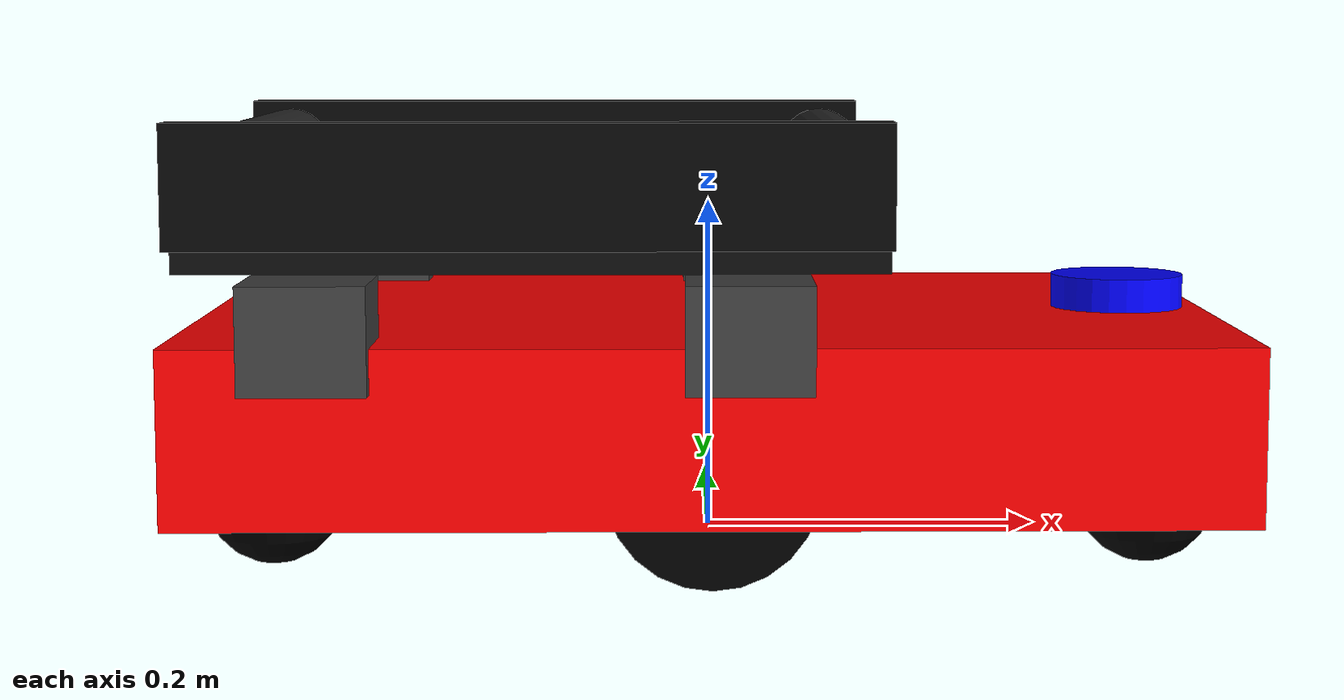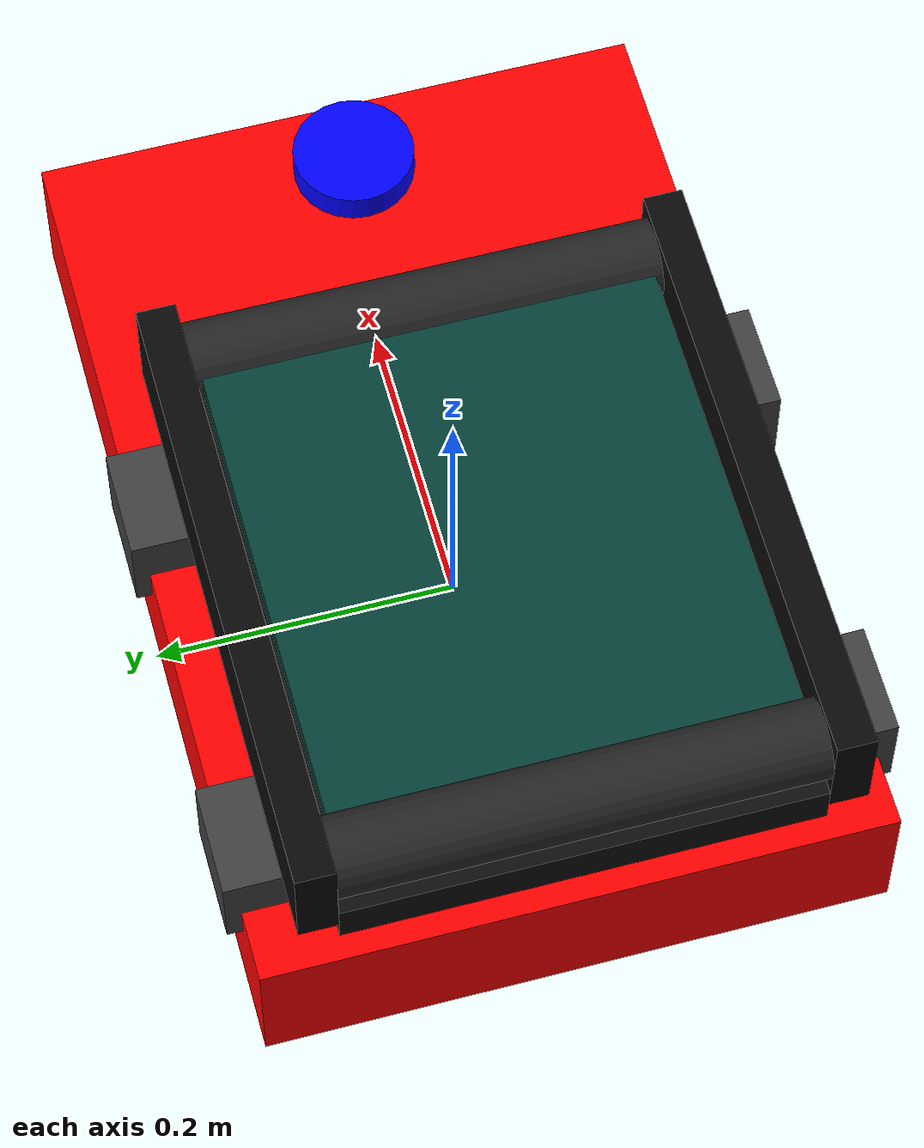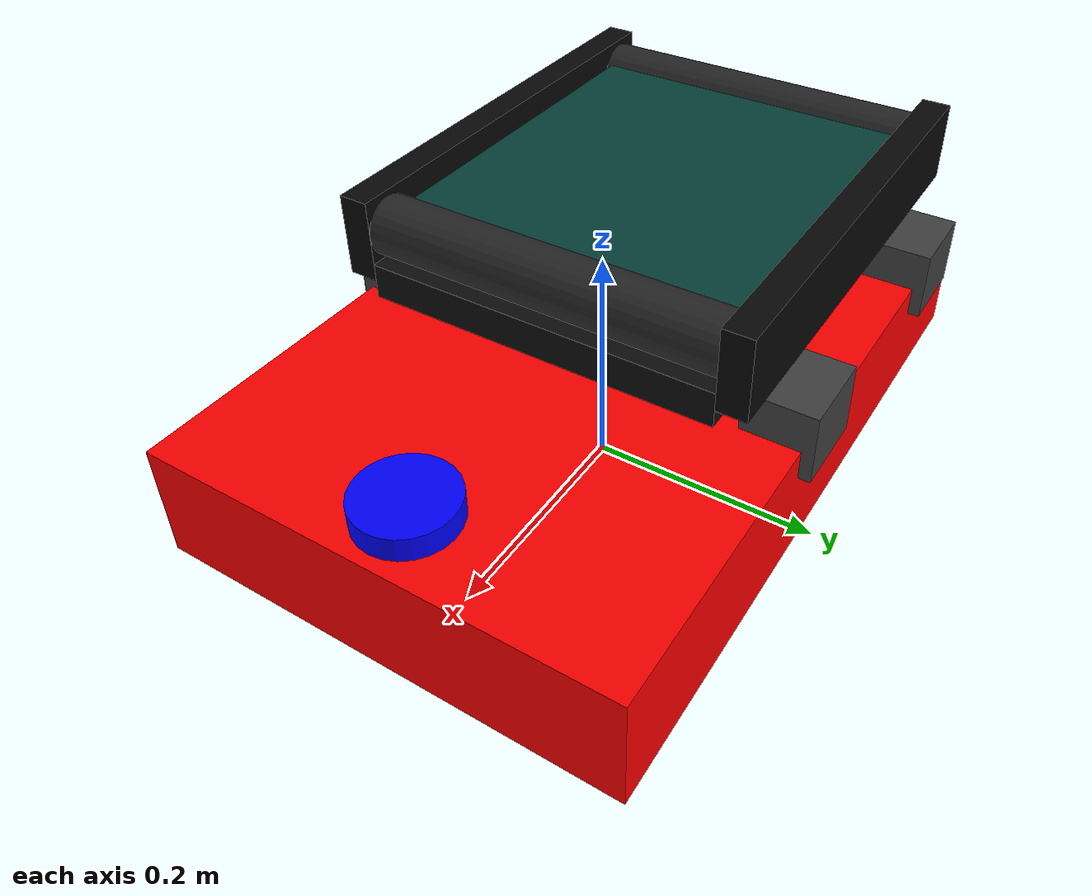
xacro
<?xml version="1.0"?>
<robot xmlns:xacro="http://www.ros.org/wiki/xacro" name="my_first_robot">

    <xacro:include filename="$(find robot_description)/urdf/properties.xacro"/>
    <xacro:include filename="$(find robot_description)/urdf/base.xacro"/>
    <xacro:include filename="$(find robot_description)/urdf/lidar.xacro"/>
    <xacro:include filename="$(find robot_description)/urdf/caster.xacro"/>
    <xacro:include filename="$(find robot_description)/urdf/wheel.xacro"/>
    <xacro:include filename="$(find robot_description)/urdf/materials.xacro"/>
    <xacro:include filename="$(find robot_description)/urdf/gazebo.xacro"/>
    <xacro:include filename="$(find robot_description)/urdf/conveyor.xacro"/>
    <xacro:include filename="$(find robot_description)/urdf/ros2_control.xacro"/>

</robot>

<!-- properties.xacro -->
<robot xmlns:xacro="http://www.ros.org/wiki/xacro" name="my_first_robot">

    <xacro:property name="base_length" value="0.6"/>
    <xacro:property name="base_width" value="0.4"/>
    <xacro:property name="base_height" value="0.1"/>
    <xacro:property name="base_mass" value="10.0"/>

    <xacro:property name="wheel_radius" value="0.06"/>
    <xacro:property name="wheel_width" value="0.04"/>
    <xacro:property name="wheel_mass" value="2.0"/>

    <xacro:property name="lidar_radius" value="0.04"/>
    <xacro:property name="lidar_length" value="0.02"/>
    <xacro:property name="lidar_mass" value="4.0"/>

    <xacro:property name="caster_radius" value="0.04"/>
    <xacro:property name="caster_mass" value="0.3"/>

</robot>

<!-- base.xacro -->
<robot name="my_first_robot" xmlns:xacro="http://www.ros.org/wiki/xacro">

    <link name="base_footprint"/>

    <joint name="foot_print_joint" type="fixed">
        <parent link="base_footprint"/>
        <child link="base_link"/>
        <origin xyz="0 0 0.085" rpy="0 0 0"/>
    </joint>

    <link name="base_link">
        <visual>
            <geometry>
                <box size="${base_length} ${base_width} ${base_height}"/>
            </geometry>
            <material name="Red"/>
        </visual>
        <collision>
            <geometry>
                <box size="${base_length} ${base_width} ${base_height}"/>
            </geometry>
        </collision>
        <inertial>
            <mass value="${base_mass}"/>
            <inertia ixx="${base_mass * (base_width**2 + base_height**2) / 12}" ixy="0" ixz="0" iyy="${base_mass * (base_length**2 + base_height**2) / 12}" iyz="0" izz="${base_mass * (base_length**2 + base_width**2) / 12}"/>
        </inertial>
    </link>

</robot>

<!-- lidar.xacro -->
<robot xmlns:xacro="http://www.ros.org/wiki/xacro" name="my_first_robot">

    <link name="lidar_link">
        <visual>
            <geometry>
                <cylinder radius="${lidar_radius}" length="${lidar_length}"/>
            </geometry>
            <material name="Blue"/>
        </visual>

        <collision>
            <geometry>
                <cylinder radius="${lidar_radius}" length="${lidar_length}"/>
            </geometry>
        </collision>

        <inertial>
            <mass value="${lidar_mass}"/>
            <inertia ixx="0.0002" ixy="0.0" ixz="0.0" iyy="0.0002" iyz="0.0" izz="0.0008"/>
        </inertial>
    </link>

    <joint name="lidar_joint" type="fixed">
        <parent link="base_link"/>
        <child link="lidar_link"/>
        <origin xyz="0.25 0 ${base_height/2 + lidar_length/2}" rpy="0 0 0"/>
    </joint>
</robot>

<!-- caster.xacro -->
<robot name="my_first_robot"
       xmlns:xacro="http://www.ros.org/wiki/xacro">

    <!-- FRONT LEFT CASTER WHEEL -->

    <link name="front_left_caster_wheel">

        <visual>
            <geometry>
                <sphere radius="${caster_radius}"/>
            </geometry>
            <material name="Black"/>
        </visual>

        <collision>
            <geometry>
                <sphere radius="${caster_radius}"/>
            </geometry>
        </collision>

        <inertial>
            <mass value="${caster_mass}"/>
            <inertia
                ixx="${2 * caster_mass * caster_radius**2 / 5}"
                ixy="0"
                ixz="0"
                iyy="${2 * caster_mass * caster_radius**2 / 5}"
                iyz="0"
                izz="${2 * caster_mass * caster_radius**2 / 5}"/>
        </inertial>

    </link>

    <joint name="front_left_caster_wheel_joint"
           type="fixed">

        <parent link="base_link"/>
        <child link="front_left_caster_wheel"/>

        <origin
            xyz="0.25 0.11 -0.045"
            rpy="0 0 0"/>

    </joint>

    <!-- FRONT RIGHT CASTER WHEEL -->

    <link name="front_right_caster_wheel">

        <visual>
            <geometry>
                <sphere radius="${caster_radius}"/>
            </geometry>
            <material name="Black"/>
        </visual>

        <collision>
            <geometry>
                <sphere radius="${caster_radius}"/>
            </geometry>
        </collision>

        <inertial>
            <mass value="${caster_mass}"/>
            <inertia
                ixx="${2 * caster_mass * caster_radius**2 / 5}"
                ixy="0"
                ixz="0"
                iyy="${2 * caster_mass * caster_radius**2 / 5}"
                iyz="0"
                izz="${2 * caster_mass * caster_radius**2 / 5}"/>
        </inertial>

    </link>

    <joint name="front_right_caster_wheel_joint"
           type="fixed">

        <parent link="base_link"/>
        <child link="front_right_caster_wheel"/>

        <origin
            xyz="0.25 -0.11 -0.045"
            rpy="0 0 0"/>

    </joint>

    <!-- REAR LEFT CASTER WHEEL -->

    <link name="rear_left_caster_wheel">

        <visual>
            <geometry>
                <sphere radius="${caster_radius}"/>
            </geometry>
            <material name="Black"/>
        </visual>

        <collision>
            <geometry>
                <sphere radius="${caster_radius}"/>
            </geometry>
        </collision>

        <inertial>
            <mass value="${caster_mass}"/>
            <inertia
                ixx="${2 * caster_mass * caster_radius**2 / 5}"
                ixy="0"
                ixz="0"
                iyy="${2 * caster_mass * caster_radius**2 / 5}"
                iyz="0"
                izz="${2 * caster_mass * caster_radius**2 / 5}"/>
        </inertial>

    </link>

    <joint name="rear_left_caster_wheel_joint"
           type="fixed">

        <parent link="base_link"/>
        <child link="rear_left_caster_wheel"/>

        <origin
            xyz="-0.25 0.11 -0.045"
            rpy="0 0 0"/>

    </joint>

    <!-- REAR RIGHT CASTER WHEEL -->

    <link name="rear_right_caster_wheel">

        <visual>
            <geometry>
                <sphere radius="${caster_radius}"/>
            </geometry>
            <material name="Black"/>
        </visual>

        <collision>
            <geometry>
                <sphere radius="${caster_radius}"/>
            </geometry>
        </collision>

        <inertial>
            <mass value="${caster_mass}"/>
            <inertia
                ixx="${2 * caster_mass * caster_radius**2 / 5}"
                ixy="0"
                ixz="0"
                iyy="${2 * caster_mass * caster_radius**2 / 5}"
                iyz="0"
                izz="${2 * caster_mass * caster_radius**2 / 5}"/>
        </inertial>

    </link>

    <joint name="rear_right_caster_wheel_joint"
           type="fixed">

        <parent link="base_link"/>
        <child link="rear_right_caster_wheel"/>

        <origin
            xyz="-0.25 -0.11 -0.045"
            rpy="0 0 0"/>

    </joint>

</robot>

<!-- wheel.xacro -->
<robot name="my_first_robot" xmlns:xacro="http://www.ros.org/wiki/xacro">

    <!-- RIGHT REAR WHEEL -->
    <link name="right_wheel">
        <visual>
            <geometry>
                <cylinder radius="${wheel_radius}" length="${wheel_width}"/>
            </geometry>
            <material name="Black"/>
        </visual>
        <collision>
            <geometry>
                <cylinder radius="${wheel_radius}" length="${wheel_width}"/>
            </geometry>
        </collision>
        <inertial>
            <mass value="${wheel_mass}"/>
            <inertia ixx="${wheel_mass * (3 * wheel_radius * wheel_radius + wheel_width * wheel_width) / 12}" ixy="0" ixz="0"
                     iyy="${wheel_mass * (3 * wheel_radius * wheel_radius + wheel_width * wheel_width) / 12}" iyz="0"
                     izz="${(wheel_mass * wheel_radius * wheel_radius) / 2}"/>
        </inertial>
    </link>

    <joint name="right_wheel_joint" type="continuous">
        <parent link="base_link"/>
        <child link="right_wheel"/>
        <origin xyz="0 0.17 -0.025" rpy="-1.5708 0 0"/>
        <axis xyz="0 0 1"/>
    </joint>

    <!-- LEFT REAR WHEEL -->
    <link name="left_wheel">
        <visual>
            <geometry>
                <cylinder radius="${wheel_radius}" length="${wheel_width}"/>
            </geometry>
            <material name="Black"/>
        </visual>
        <collision>
            <geometry>
                <cylinder radius="${wheel_radius}" length="${wheel_width}"/>
            </geometry>
        </collision>
        <inertial>
            <mass value="${wheel_mass}"/>
            <inertia ixx="${wheel_mass * (3 * wheel_radius * wheel_radius + wheel_width * wheel_width) / 12}" ixy="0" ixz="0"
                     iyy="${wheel_mass * (3 * wheel_radius * wheel_radius + wheel_width * wheel_width) / 12}" iyz="0"
                     izz="${(wheel_mass * wheel_radius * wheel_radius) / 2}"/>
        </inertial>
    </link>

    <joint name="left_wheel_joint" type="continuous">
        <parent link="base_link"/>
        <child link="left_wheel"/>
        <origin xyz="0 -0.17 -0.025" rpy="-1.5708 0 0"/>
        <axis xyz="0 0 1"/>
    </joint>

</robot>

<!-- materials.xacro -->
<robot xmlns:xacro="http://www.ros.org/wiki/xacro" name="my_first_robot">

    <material name="Red">
        <color rgba="1 0 0 1"/>
    </material>

    <material name="Black">
        <color rgba="0 0 0 1"/>
    </material>

    <material name="Blue">
        <color rgba="0 0 1 1"/>
    </material>

</robot>

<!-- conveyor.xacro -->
<robot name="conveyor"
       xmlns:xacro="http://www.ros.org/wiki/xacro">

    <!-- CONVEYOR PARAMETERS                                      -->

    <xacro:property name="conveyor_length" value="0.40"/>
    <xacro:property name="conveyor_width" value="0.30"/>
    <xacro:property name="conveyor_thickness" value="0.03"/>

    <!-- Position above robot base -->
    <xacro:property name="conveyor_z" value="0.10"/>

    <!-- ROLLER PARAMETERS                                        -->

    <xacro:property name="roller_radius" value="0.025"/>
    <xacro:property name="roller_length"
                    value="${conveyor_width}"/>

    <!-- SUPPORT PARAMETERS                                       -->

    <xacro:property name="frame_thickness" value="0.025"/>
    <xacro:property name="frame_height" value="0.07"/>

    <!-- MOTOR PARAMETERS                                         -->

    <xacro:property name="motor_length" value="0.07"/>
    <xacro:property name="motor_width" value="0.06"/>
    <xacro:property name="motor_height" value="0.06"/>

    <!-- MAIN CONVEYOR FRAME                                      -->

    <link name="conveyor_frame">

        <visual>
            <origin xyz="0 0 0" rpy="0 0 0"/>

            <geometry>
                <box size="${conveyor_length}
                           ${conveyor_width}
                           ${conveyor_thickness}"/>
            </geometry>

            <material name="conveyor_frame_material">
                <color rgba="0.05 0.05 0.05 1"/>
            </material>
        </visual>

        <collision>
            <origin xyz="0 0 0" rpy="0 0 0"/>

            <geometry>
                <box size="${conveyor_length}
                           ${conveyor_width}
                           ${conveyor_thickness}"/>
            </geometry>
        </collision>

        <inertial>
            <origin xyz="0 0 0" rpy="0 0 0"/>

            <mass value="2.0"/>

            <inertia
                ixx="0.01"
                ixy="0"
                ixz="0"
                iyy="0.01"
                iyz="0"
                izz="0.01"/>
        </inertial>

    </link>

    <!-- CONNECT CONVEYOR TO ROBOT BASE                           -->

    <joint name="conveyor_frame_joint" type="fixed">

        <parent link="base_link"/>
        <child link="conveyor_frame"/>

        <origin xyz="-0.10 0 ${conveyor_z}"
                rpy="0 0 0"/>

    </joint>

    <!-- FRONT ROLLER                                             -->

    <link name="front_conveyor_roller">

        <visual>

            <!-- Cylinder axis along Y -->
            <origin xyz="0 0 0"
                    rpy="-1.5708 0 0"/>

            <geometry>
                <cylinder
                    radius="${roller_radius}"
                    length="${roller_length}"/>
            </geometry>

            <material name="front_roller_material">
                <color rgba="0.15 0.15 0.15 1"/>
            </material>

        </visual>

        <collision>

            <origin xyz="0 0 0"
                    rpy="-1.5708 0 0"/>

            <geometry>
                <cylinder
                    radius="${roller_radius}"
                    length="${roller_length}"/>
            </geometry>

        </collision>

        <inertial>

            <origin xyz="0 0 0"
                    rpy="0 0 0"/>

            <mass value="0.3"/>

            <inertia
                ixx="0.0001"
                ixy="0"
                ixz="0"
                iyy="0.0001"
                iyz="0"
                izz="0.0001"/>

        </inertial>

    </link>

    <joint name="front_conveyor_roller_joint"
           type="continuous">

        <parent link="conveyor_frame"/>
        <child link="front_conveyor_roller"/>

        <origin
            xyz="${conveyor_length/2 - roller_radius}
                 0
                 ${conveyor_thickness/2 + roller_radius}"
            rpy="0 0 0"/>

        <axis xyz="0 1 0"/>

    </joint>

    <!-- REAR ROLLER                                              -->

    <link name="rear_conveyor_roller">

        <visual>

            <origin xyz="0 0 0"
                    rpy="-1.5708 0 0"/>

            <geometry>
                <cylinder
                    radius="${roller_radius}"
                    length="${roller_length}"/>
            </geometry>

            <material name="rear_roller_material">
                <color rgba="0.15 0.15 0.15 1"/>
            </material>

        </visual>

        <collision>

            <origin xyz="0 0 0"
                    rpy="-1.5708 0 0"/>

            <geometry>
                <cylinder
                    radius="${roller_radius}"
                    length="${roller_length}"/>
            </geometry>

        </collision>

        <inertial>

            <origin xyz="0 0 0"
                    rpy="0 0 0"/>

            <mass value="0.3"/>

            <inertia
                ixx="0.0001"
                ixy="0"
                ixz="0"
                iyy="0.0001"
                iyz="0"
                izz="0.0001"/>

        </inertial>

    </link>

    <joint name="rear_conveyor_roller_joint"
           type="continuous">

        <parent link="conveyor_frame"/>
        <child link="rear_conveyor_roller"/>

        <origin
            xyz="${-conveyor_length/2 + roller_radius}
                 0
                 ${conveyor_thickness/2 + roller_radius}"
            rpy="0 0 0"/>

        <axis xyz="0 1 0"/>

    </joint>

    <!-- CONVEYOR BELT                                            -->

    <link name="conveyor_belt">

        <visual>

            <origin
                xyz="0
                     0
                     ${conveyor_thickness/2 + roller_radius + 0.005}"
                rpy="0 0 0"/>

            <geometry>
                <box
                    size="${conveyor_length - 0.02}
                          ${conveyor_width - 0.01}
                          0.015"/>
            </geometry>

            <material name="belt_material">
                <color rgba="0.02 0.25 0.22 1"/>
            </material>

        </visual>

        <collision>

            <origin
                xyz="0
                     0
                     ${conveyor_thickness/2 + roller_radius + 0.005}"
                rpy="0 0 0"/>

            <geometry>
                <box
                    size="${conveyor_length - 0.02}
                          ${conveyor_width - 0.01}
                          0.015"/>
            </geometry>

        </collision>

    </link>

    <joint name="conveyor_belt_joint"
           type="fixed">

        <parent link="conveyor_frame"/>
        <child link="conveyor_belt"/>

        <origin xyz="0 0 0"
                rpy="0 0 0"/>

    </joint>

    <!-- LEFT SIDE SUPPORT                                        -->

    <link name="conveyor_left_support">

        <visual>

            <origin xyz="0 0 0"
                    rpy="0 0 0"/>

            <geometry>
                <box
                    size="${conveyor_length}
                          ${frame_thickness}
                          ${frame_height}"/>
            </geometry>

            <material name="left_support_material">
                <color rgba="0.03 0.03 0.03 1"/>
            </material>

        </visual>

        <collision>

            <origin xyz="0 0 0"
                    rpy="0 0 0"/>

            <geometry>
                <box
                    size="${conveyor_length}
                          ${frame_thickness}
                          ${frame_height}"/>
            </geometry>

        </collision>

        <inertial>

            <origin xyz="0 0 0"
                    rpy="0 0 0"/>

            <mass value="0.5"/>

            <inertia
                ixx="0.001"
                ixy="0"
                ixz="0"
                iyy="0.001"
                iyz="0"
                izz="0.001"/>

        </inertial>

    </link>

    <joint name="conveyor_left_support_joint"
           type="fixed">

        <parent link="conveyor_frame"/>
        <child link="conveyor_left_support"/>

        <origin
            xyz="0
                 ${conveyor_width/2 + frame_thickness/2}
                 ${frame_height/2}"
            rpy="0 0 0"/>

    </joint>

    <!-- RIGHT SIDE SUPPORT                                       -->

    <link name="conveyor_right_support">

        <visual>

            <origin xyz="0 0 0"
                    rpy="0 0 0"/>

            <geometry>
                <box
                    size="${conveyor_length}
                          ${frame_thickness}
                          ${frame_height}"/>
            </geometry>

            <material name="right_support_material">
                <color rgba="0.03 0.03 0.03 1"/>
            </material>

        </visual>

        <collision>

            <origin xyz="0 0 0"
                    rpy="0 0 0"/>

            <geometry>
                <box
                    size="${conveyor_length}
                          ${frame_thickness}
                          ${frame_height}"/>
            </geometry>

        </collision>

        <inertial>

            <origin xyz="0 0 0"
                    rpy="0 0 0"/>

            <mass value="0.5"/>

            <inertia
                ixx="0.001"
                ixy="0"
                ixz="0"
                iyy="0.001"
                iyz="0"
                izz="0.001"/>

        </inertial>

    </link>

    <joint name="conveyor_right_support_joint"
           type="fixed">

        <parent link="conveyor_frame"/>
        <child link="conveyor_right_support"/>

        <origin
            xyz="0
                 ${-(conveyor_width/2 + frame_thickness/2)}
                 ${frame_height/2}"
            rpy="0 0 0"/>

    </joint>

    <!-- FRONT LEFT MOTOR                                         -->

    <link name="conveyor_front_left_motor">

        <visual>

            <origin xyz="0 0 0"
                    rpy="0 0 0"/>

            <geometry>
                <box
                    size="${motor_length}
                          ${motor_width}
                          ${motor_height}"/>
            </geometry>

            <material name="front_left_motor_material">
                <color rgba="0.25 0.25 0.25 1"/>
            </material>

        </visual>

        <collision>

            <origin xyz="0 0 0"
                    rpy="0 0 0"/>

            <geometry>
                <box
                    size="${motor_length}
                          ${motor_width}
                          ${motor_height}"/>
            </geometry>

        </collision>

    </link>

    <joint name="conveyor_front_left_motor_joint"
           type="fixed">

        <parent link="conveyor_frame"/>
        <child link="conveyor_front_left_motor"/>

        <origin
            xyz="${conveyor_length/2 - 0.08}
                 ${-(conveyor_width/2 + motor_width/2)}
                 -${motor_height/2 + conveyor_thickness/2}"
            rpy="0 0 0"/>

    </joint>

    <!-- FRONT RIGHT MOTOR                                        -->

    <link name="conveyor_front_right_motor">

        <visual>

            <origin xyz="0 0 0"
                    rpy="0 0 0"/>

            <geometry>
                <box
                    size="${motor_length}
                          ${motor_width}
                          ${motor_height}"/>
            </geometry>

            <material name="front_right_motor_material">
                <color rgba="0.25 0.25 0.25 1"/>
            </material>

        </visual>

        <collision>

            <origin xyz="0 0 0"
                    rpy="0 0 0"/>

            <geometry>
                <box
                    size="${motor_length}
                          ${motor_width}
                          ${motor_height}"/>
            </geometry>

        </collision>

    </link>

    <joint name="conveyor_front_right_motor_joint"
           type="fixed">

        <parent link="conveyor_frame"/>
        <child link="conveyor_front_right_motor"/>

        <origin
            xyz="${conveyor_length/2 - 0.08}
                 ${conveyor_width/2 + motor_width/2}
                 -${motor_height/2 + conveyor_thickness/2}"
            rpy="0 0 0"/>

    </joint>

    <!-- REAR LEFT MOTOR                                          -->

    <link name="conveyor_rear_left_motor">

        <visual>

            <origin xyz="0 0 0"
                    rpy="0 0 0"/>

            <geometry>
                <box
                    size="${motor_length}
                          ${motor_width}
                          ${motor_height}"/>
            </geometry>

            <material name="rear_left_motor_material">
                <color rgba="0.25 0.25 0.25 1"/>
            </material>

        </visual>

        <collision>

            <origin xyz="0 0 0"
                    rpy="0 0 0"/>

            <geometry>
                <box
                    size="${motor_length}
                          ${motor_width}
                          ${motor_height}"/>
            </geometry>

        </collision>

    </link>

    <joint name="conveyor_rear_left_motor_joint"
           type="fixed">

        <parent link="conveyor_frame"/>
        <child link="conveyor_rear_left_motor"/>

        <origin
            xyz="${-conveyor_length/2 + 0.08}
                 ${-(conveyor_width/2 + motor_width/2)}
                 -${motor_height/2 + conveyor_thickness/2}"
            rpy="0 0 0"/>

    </joint>

    <!-- REAR RIGHT MOTOR                                         -->

    <link name="conveyor_rear_right_motor">

        <visual>

            <origin xyz="0 0 0"
                    rpy="0 0 0"/>

            <geometry>
                <box
                    size="${motor_length}
                          ${motor_width}
                          ${motor_height}"/>
            </geometry>

            <material name="rear_right_motor_material">
                <color rgba="0.25 0.25 0.25 1"/>
            </material>

        </visual>

        <collision>

            <origin xyz="0 0 0"
                    rpy="0 0 0"/>

            <geometry>
                <box
                    size="${motor_length}
                          ${motor_width}
                          ${motor_height}"/>
            </geometry>

        </collision>

    </link>

    <joint name="conveyor_rear_right_motor_joint"
           type="fixed">

        <parent link="conveyor_frame"/>
        <child link="conveyor_rear_right_motor"/>

        <origin
            xyz="${-conveyor_length/2 + 0.08}
                 ${conveyor_width/2 + motor_width/2}
                 -${motor_height/2 + conveyor_thickness/2}"
            rpy="0 0 0"/>

    </joint>

</robot>
